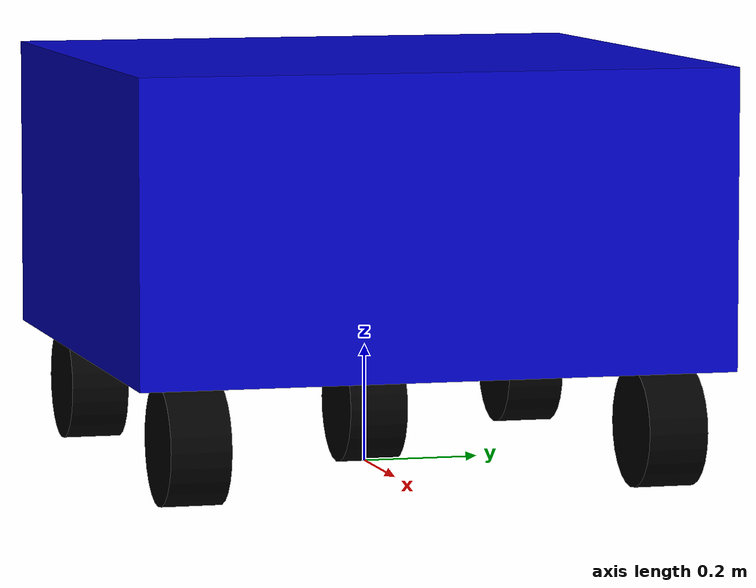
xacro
<?xml version="1.0"?>
<robot xmlns:xacro="http://www.ros.org/wiki/xacro" name="prac_4_exam">
	<xacro:property name="pi" value="3.1415"/>

	<material name="blue">
		<color rgba="0 0 0.8 1"/>
	</material>
	<material name="black">
		<color rgba="0 0 0 1"/>
	</material>
	<material name="white">
		<color rgba="1 1 1 1"/>
	</material>

	<link name="base_link">
		<visual>
			<geometry>
				<box size = "1 1 0.5"/>
			</geometry>
			<material name="blue"/>
		</visual>
		<collision>
			<geometry>
				<box size = "1 1 1"/>
			</geometry>
		</collision>

	</link>

	<link name="base_footprint">
    	</link>
	<joint name="from_base_footprint" type="fixed">
		<axis xyz="0 1 0" rpy="0 0 0"/>
		<parent link="base_footprint"/>
		<child link="base_link"/>
		<origin xyz="0 0 0.45" rpy="0 0 0"/>
	</joint>

	<link name="wheel1">
		<visual>
			<geometry>
				<cylinder length="0.1" radius="0.1"/>
			</geometry>
			<origin rpy="0 0 0" xyz="0 0 0"/>
			<material name="black"/>
		</visual>
		<collision>
			<geometry>
				<cylinder length="0.1" radius="0.1"/>
			</geometry>
			<origin rpy="0 0 0" xyz="0 0 0"/>
		</collision>

	</link>

	<joint name="wheel1_to_base_link" type="fixed">
		<parent link="base_link"/>
		<child link="wheel1"/>
		<origin xyz="0.4 0.4 -0.35" rpy="${pi/2} 0 0"/>
	</joint>
	<link name="wheel2">
		<visual>
			<geometry>
				<cylinder length="0.1" radius="0.1"/>
			</geometry>
			<origin rpy="0 0 0" xyz="0 0 0"/>
			<material name="black"/>
		</visual>
		<collision>
			<geometry>
				<cylinder length="0.1" radius="0.1"/>
			</geometry>
			<origin rpy="0 0 0" xyz="0 0 0"/>
		</collision>

	</link>

	<joint name="wheel2_to_base_link" type="fixed">
		<parent link="base_link"/>
		<child link="wheel2"/>
		<origin xyz="-0.4 0.4 -0.35" rpy="${pi/2} 0 0"/>
	</joint>

	<link name="wheel3">
		<visual>
			<geometry>
				<cylinder length="0.1" radius="0.1"/>
			</geometry>
			<origin rpy="0 0 0" xyz="0 0 0"/>
			<material name="black"/>
		</visual>
		<collision>
			<geometry>
				<cylinder length="0.1" radius="0.1"/>
			</geometry>
			<origin rpy="0 0 0" xyz="0 0 0"/>
		</collision>

	</link>

	<joint name="wheel3_to_base_link" type="fixed">
		<parent link="base_link"/>
		<child link="wheel3"/>
		<origin xyz="-0.4 -0.4 -0.35" rpy="${pi/2} 0 0"/>
	</joint>

	<link name="wheel4">
		<visual>
			<geometry>
				<cylinder length="0.1" radius="0.1"/>
			</geometry>
			<origin rpy="0 0 0" xyz="0 0 0"/>
			<material name="black"/>
		</visual>
		<collision>
			<geometry>
				<cylinder length="0.1" radius="0.1"/>
			</geometry>
			<origin rpy="0 0 0" xyz="0 0 0"/>
		</collision>

	</link>

	<joint name="wheel4_to_base_link" type="fixed">
		<parent link="base_link"/>
		<child link="wheel4"/>
		<origin xyz="0.4 -0.4 -0.35" rpy="${pi/2} 0 0"/>
	</joint>

	<link name="wheel5">
		<visual>
			<geometry>
				<cylinder length="0.1" radius="0.1"/>
			</geometry>
			<origin rpy="0 0 0" xyz="0 0 0"/>
			<material name="black"/>
		</visual>
		<collision>
			<geometry>
				<cylinder length="0.1" radius="0.1"/>
			</geometry>
			<origin rpy="0 0 0" xyz="0 0 0"/>
		</collision>

	</link>

	<joint name="wheel5_to_base_link" type="fixed">
		<parent link="base_link"/>
		<child link="wheel5"/>
		<origin xyz="0 0 -0.35" rpy="${pi/2} 0 0"/>
	</joint>

</robot>
